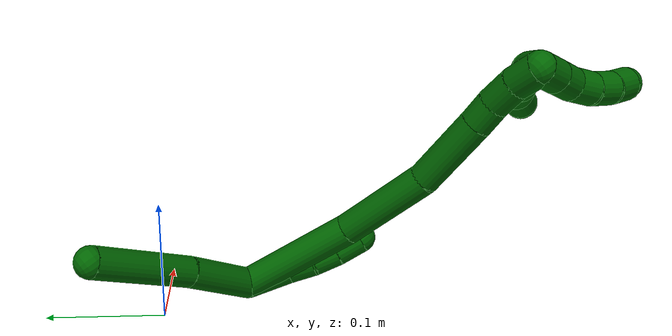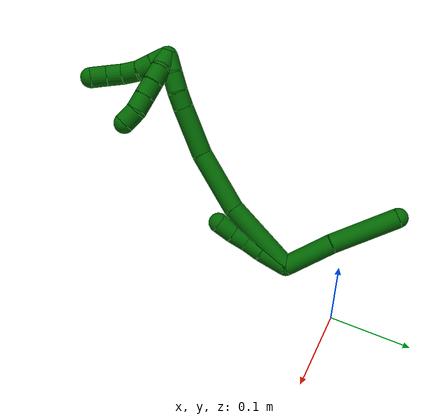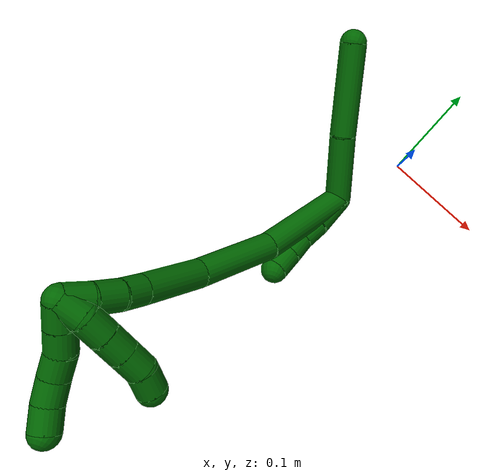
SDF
<sdf version="1.7">
 <world name="default">
  <model name="6">
   <static>0</static>
   <link name="6">
    <collision name="collision-cylinder-e_1_2_8">
     <pose>-0.024395 0.009203 -0.018463 -2.67917 -0.868821 2.20249</pose>
     <geometry><cylinder><radius>0.0125</radius><length>0.063897</length></cylinder></geometry>
     <surface>
      <friction><ode><mu>1.16</mu><mu2>1.16</mu2><slip1>0</slip1><slip2>0</slip2></ode></friction>
      <contact><ode><kp>1e+06</kp><kd>1</kd><max_vel>0</max_vel><min_depth>0.001</min_depth></ode></contact>
     </surface>
    </collision>
    <visual name="visual-cylinder-e_1_2_8">
     <pose>-0.024395 0.009203 -0.018463 -2.67917 -0.868821 2.20249</pose>
     <geometry><cylinder><radius>0.0125</radius><length>0.063897</length></cylinder></geometry>
     <material><ambient>0 0.392157 0.003922 1</ambient></material>
    </visual>
    <collision name="collision-cylinder-e_2_8_6">
     <pose>-0.079183 0.030619 -0.064864 -2.72949 -0.783807 2.20511</pose>
     <geometry><cylinder><radius>0.0125</radius><length>0.086103</length></cylinder></geometry>
     <surface>
      <friction><ode><mu>1.16</mu><mu2>1.16</mu2><slip1>0</slip1><slip2>0</slip2></ode></friction>
      <contact><ode><kp>1e+06</kp><kd>1</kd><max_vel>0</max_vel><min_depth>0.001</min_depth></ode></contact>
     </surface>
    </collision>
    <visual name="visual-cylinder-e_2_8_6">
     <pose>-0.079183 0.030619 -0.064864 -2.72949 -0.783807 2.20511</pose>
     <geometry><cylinder><radius>0.0125</radius><length>0.086103</length></cylinder></geometry>
     <material><ambient>0 0.392157 0.003922 1</ambient></material>
    </visual>
    <collision name="collision-cylinder-e_1_2_9">
     <pose>-0.002284 -0.006488 0.016225 0.380378 -0.129977 -0.025057</pose>
     <geometry><cylinder><radius>0.0125</radius><length>0.035245</length></cylinder></geometry>
     <surface>
      <friction><ode><mu>1.16</mu><mu2>1.16</mu2><slip1>0</slip1><slip2>0</slip2></ode></friction>
      <contact><ode><kp>1e+06</kp><kd>1</kd><max_vel>0</max_vel><min_depth>0.001</min_depth></ode></contact>
     </surface>
    </collision>
    <visual name="visual-cylinder-e_1_2_9">
     <pose>-0.002284 -0.006488 0.016225 0.380378 -0.129977 -0.025057</pose>
     <geometry><cylinder><radius>0.0125</radius><length>0.035245</length></cylinder></geometry>
     <material><ambient>0 0.392157 0.003922 1</ambient></material>
    </visual>
    <collision name="collision-cylinder-e_2_9_10">
     <pose>-0.006797 -0.017842 0.041938 0.473915 -0.206045 -0.049925</pose>
     <geometry><cylinder><radius>0.0125</radius><length>0.021789</length></cylinder></geometry>
     <surface>
      <friction><ode><mu>1.16</mu><mu2>1.16</mu2><slip1>0</slip1><slip2>0</slip2></ode></friction>
      <contact><ode><kp>1e+06</kp><kd>1</kd><max_vel>0</max_vel><min_depth>0.001</min_depth></ode></contact>
     </surface>
    </collision>
    <visual name="visual-cylinder-e_2_9_10">
     <pose>-0.006797 -0.017842 0.041938 0.473915 -0.206045 -0.049925</pose>
     <geometry><cylinder><radius>0.0125</radius><length>0.021789</length></cylinder></geometry>
     <material><ambient>0 0.392157 0.003922 1</ambient></material>
    </visual>
    <collision name="collision-cylinder-e_3_10_11">
     <pose>-0.010538 -0.025957 0.061107 0.323769 -0.146995 -0.024049</pose>
     <geometry><cylinder><radius>0.0125</radius><length>0.020643</length></cylinder></geometry>
     <surface>
      <friction><ode><mu>1.16</mu><mu2>1.16</mu2><slip1>0</slip1><slip2>0</slip2></ode></friction>
      <contact><ode><kp>1e+06</kp><kd>1</kd><max_vel>0</max_vel><min_depth>0.001</min_depth></ode></contact>
     </surface>
    </collision>
    <visual name="visual-cylinder-e_3_10_11">
     <pose>-0.010538 -0.025957 0.061107 0.323769 -0.146995 -0.024049</pose>
     <geometry><cylinder><radius>0.0125</radius><length>0.020643</length></cylinder></geometry>
     <material><ambient>0 0.392157 0.003922 1</ambient></material>
    </visual>
    <collision name="collision-cylinder-e_4_11_5">
     <pose>-0.014817 -0.031882 0.081263 0.250143 -0.250545 -0.031664</pose>
     <geometry><cylinder><radius>0.0125</radius><length>0.022323</length></cylinder></geometry>
     <surface>
      <friction><ode><mu>1.16</mu><mu2>1.16</mu2><slip1>0</slip1><slip2>0</slip2></ode></friction>
      <contact><ode><kp>1e+06</kp><kd>1</kd><max_vel>0</max_vel><min_depth>0.001</min_depth></ode></contact>
     </surface>
    </collision>
    <visual name="visual-cylinder-e_4_11_5">
     <pose>-0.014817 -0.031882 0.081263 0.250143 -0.250545 -0.031664</pose>
     <geometry><cylinder><radius>0.0125</radius><length>0.022323</length></cylinder></geometry>
     <material><ambient>0 0.392157 0.003922 1</ambient></material>
    </visual>
    <collision name="collision-cylinder-e_1_2_12">
     <pose>-0.020745 -0.015559 0.041029 0.362462 -0.441623 -0.082219</pose>
     <geometry><cylinder><radius>0.0125</radius><length>0.097075</length></cylinder></geometry>
     <surface>
      <friction><ode><mu>1.16</mu><mu2>1.16</mu2><slip1>0</slip1><slip2>0</slip2></ode></friction>
      <contact><ode><kp>1e+06</kp><kd>1</kd><max_vel>0</max_vel><min_depth>0.001</min_depth></ode></contact>
     </surface>
    </collision>
    <visual name="visual-cylinder-e_1_2_12">
     <pose>-0.020745 -0.015559 0.041029 0.362462 -0.441623 -0.082219</pose>
     <geometry><cylinder><radius>0.0125</radius><length>0.097075</length></cylinder></geometry>
     <material><ambient>0 0.392157 0.003922 1</ambient></material>
    </visual>
    <collision name="collision-cylinder-e_2_12_13">
     <pose>-0.064875 -0.042515 0.110686 0.378879 -0.649188 -0.12886</pose>
     <geometry><cylinder><radius>0.0125</radius><length>0.077363</length></cylinder></geometry>
     <surface>
      <friction><ode><mu>1.16</mu><mu2>1.16</mu2><slip1>0</slip1><slip2>0</slip2></ode></friction>
      <contact><ode><kp>1e+06</kp><kd>1</kd><max_vel>0</max_vel><min_depth>0.001</min_depth></ode></contact>
     </surface>
    </collision>
    <visual name="visual-cylinder-e_2_12_13">
     <pose>-0.064875 -0.042515 0.110686 0.378879 -0.649188 -0.12886</pose>
     <geometry><cylinder><radius>0.0125</radius><length>0.077363</length></cylinder></geometry>
     <material><ambient>0 0.392157 0.003922 1</ambient></material>
    </visual>
    <collision name="collision-cylinder-e_3_13_14">
     <pose>-0.110138 -0.057351 0.160019 0.164569 -0.806146 -0.070305</pose>
     <geometry><cylinder><radius>0.0125</radius><length>0.060637</length></cylinder></geometry>
     <surface>
      <friction><ode><mu>1.16</mu><mu2>1.16</mu2><slip1>0</slip1><slip2>0</slip2></ode></friction>
      <contact><ode><kp>1e+06</kp><kd>1</kd><max_vel>0</max_vel><min_depth>0.001</min_depth></ode></contact>
     </surface>
    </collision>
    <visual name="visual-cylinder-e_3_13_14">
     <pose>-0.110138 -0.057351 0.160019 0.164569 -0.806146 -0.070305</pose>
     <geometry><cylinder><radius>0.0125</radius><length>0.060637</length></cylinder></geometry>
     <material><ambient>0 0.392157 0.003922 1</ambient></material>
    </visual>
    <collision name="collision-cylinder-e_4_14_15">
     <pose>-0.13955 -0.061667 0.187366 0.131388 -0.843916 -0.059051</pose>
     <geometry><cylinder><radius>0.0125</radius><length>0.020162</length></cylinder></geometry>
     <surface>
      <friction><ode><mu>1.16</mu><mu2>1.16</mu2><slip1>0</slip1><slip2>0</slip2></ode></friction>
      <contact><ode><kp>1e+06</kp><kd>1</kd><max_vel>0</max_vel><min_depth>0.001</min_depth></ode></contact>
     </surface>
    </collision>
    <visual name="visual-cylinder-e_4_14_15">
     <pose>-0.13955 -0.061667 0.187366 0.131388 -0.843916 -0.059051</pose>
     <geometry><cylinder><radius>0.0125</radius><length>0.020162</length></cylinder></geometry>
     <material><ambient>0 0.392157 0.003922 1</ambient></material>
    </visual>
    <collision name="collision-cylinder-e_5_15_16">
     <pose>-0.155949 -0.065013 0.200634 0.356548 -0.897572 -0.173107</pose>
     <geometry><cylinder><radius>0.0125</radius><length>0.022682</length></cylinder></geometry>
     <surface>
      <friction><ode><mu>1.16</mu><mu2>1.16</mu2><slip1>0</slip1><slip2>0</slip2></ode></friction>
      <contact><ode><kp>1e+06</kp><kd>1</kd><max_vel>0</max_vel><min_depth>0.001</min_depth></ode></contact>
     </surface>
    </collision>
    <visual name="visual-cylinder-e_5_15_16">
     <pose>-0.155949 -0.065013 0.200634 0.356548 -0.897572 -0.173107</pose>
     <geometry><cylinder><radius>0.0125</radius><length>0.022682</length></cylinder></geometry>
     <material><ambient>0 0.392157 0.003922 1</ambient></material>
    </visual>
    <collision name="collision-cylinder-e_6_16_1">
     <pose>-0.173257 -0.071829 0.212894 0.657364 -0.870328 -0.314484</pose>
     <geometry><cylinder><radius>0.0125</radius><length>0.022082</length></cylinder></geometry>
     <surface>
      <friction><ode><mu>1.16</mu><mu2>1.16</mu2><slip1>0</slip1><slip2>0</slip2></ode></friction>
      <contact><ode><kp>1e+06</kp><kd>1</kd><max_vel>0</max_vel><min_depth>0.001</min_depth></ode></contact>
     </surface>
    </collision>
    <visual name="visual-cylinder-e_6_16_1">
     <pose>-0.173257 -0.071829 0.212894 0.657364 -0.870328 -0.314484</pose>
     <geometry><cylinder><radius>0.0125</radius><length>0.022082</length></cylinder></geometry>
     <material><ambient>0 0.392157 0.003922 1</ambient></material>
    </visual>
    <collision name="collision-cylinder-e_1_1_17">
     <pose>-0.174383 -0.079173 0.224654 0.4548 0.820468 0.200603</pose>
     <geometry><cylinder><radius>0.0125</radius><length>0.02</length></cylinder></geometry>
     <surface>
      <friction><ode><mu>1.16</mu><mu2>1.16</mu2><slip1>0</slip1><slip2>0</slip2></ode></friction>
      <contact><ode><kp>1e+06</kp><kd>1</kd><max_vel>0</max_vel><min_depth>0.001</min_depth></ode></contact>
     </surface>
    </collision>
    <visual name="visual-cylinder-e_1_1_17">
     <pose>-0.174383 -0.079173 0.224654 0.4548 0.820468 0.200603</pose>
     <geometry><cylinder><radius>0.0125</radius><length>0.02</length></cylinder></geometry>
     <material><ambient>0 0.392157 0.003922 1</ambient></material>
    </visual>
    <collision name="collision-cylinder-e_2_17_18">
     <pose>-0.159737 -0.085217 0.236858 0.464898 0.822991 0.205891</pose>
     <geometry><cylinder><radius>0.0125</radius><length>0.02</length></cylinder></geometry>
     <surface>
      <friction><ode><mu>1.16</mu><mu2>1.16</mu2><slip1>0</slip1><slip2>0</slip2></ode></friction>
      <contact><ode><kp>1e+06</kp><kd>1</kd><max_vel>0</max_vel><min_depth>0.001</min_depth></ode></contact>
     </surface>
    </collision>
    <visual name="visual-cylinder-e_2_17_18">
     <pose>-0.159737 -0.085217 0.236858 0.464898 0.822991 0.205891</pose>
     <geometry><cylinder><radius>0.0125</radius><length>0.02</length></cylinder></geometry>
     <material><ambient>0 0.392157 0.003922 1</ambient></material>
    </visual>
    <collision name="collision-cylinder-e_3_18_19">
     <pose>-0.147026 -0.092655 0.250134 0.547607 0.567888 0.163559</pose>
     <geometry><cylinder><radius>0.0125</radius><length>0.02</length></cylinder></geometry>
     <surface>
      <friction><ode><mu>1.16</mu><mu2>1.16</mu2><slip1>0</slip1><slip2>0</slip2></ode></friction>
      <contact><ode><kp>1e+06</kp><kd>1</kd><max_vel>0</max_vel><min_depth>0.001</min_depth></ode></contact>
     </surface>
    </collision>
    <visual name="visual-cylinder-e_3_18_19">
     <pose>-0.147026 -0.092655 0.250134 0.547607 0.567888 0.163559</pose>
     <geometry><cylinder><radius>0.0125</radius><length>0.02</length></cylinder></geometry>
     <material><ambient>0 0.392157 0.003922 1</ambient></material>
    </visual>
    <collision name="collision-cylinder-e_4_19_20">
     <pose>-0.136894 -0.099739 0.265707 0.311223 0.495417 0.079309</pose>
     <geometry><cylinder><radius>0.0125</radius><length>0.02</length></cylinder></geometry>
     <surface>
      <friction><ode><mu>1.16</mu><mu2>1.16</mu2><slip1>0</slip1><slip2>0</slip2></ode></friction>
      <contact><ode><kp>1e+06</kp><kd>1</kd><max_vel>0</max_vel><min_depth>0.001</min_depth></ode></contact>
     </surface>
    </collision>
    <visual name="visual-cylinder-e_4_19_20">
     <pose>-0.136894 -0.099739 0.265707 0.311223 0.495417 0.079309</pose>
     <geometry><cylinder><radius>0.0125</radius><length>0.02</length></cylinder></geometry>
     <material><ambient>0 0.392157 0.003922 1</ambient></material>
    </visual>
    <collision name="collision-cylinder-e_5_20_4">
     <pose>-0.12726 -0.103301 0.282767 0.099645 0.509734 0.025981</pose>
     <geometry><cylinder><radius>0.0125</radius><length>0.02</length></cylinder></geometry>
     <surface>
      <friction><ode><mu>1.16</mu><mu2>1.16</mu2><slip1>0</slip1><slip2>0</slip2></ode></friction>
      <contact><ode><kp>1e+06</kp><kd>1</kd><max_vel>0</max_vel><min_depth>0.001</min_depth></ode></contact>
     </surface>
    </collision>
    <visual name="visual-cylinder-e_5_20_4">
     <pose>-0.12726 -0.103301 0.282767 0.099645 0.509734 0.025981</pose>
     <geometry><cylinder><radius>0.0125</radius><length>0.02</length></cylinder></geometry>
     <material><ambient>0 0.392157 0.003922 1</ambient></material>
    </visual>
    <collision name="collision-cylinder-e_1_1_21">
     <pose>-0.173521 -0.07078 0.220529 -1.21579 0.957313 -0.692969</pose>
     <geometry><cylinder><radius>0.0125</radius><length>0.02</length></cylinder></geometry>
     <surface>
      <friction><ode><mu>1.16</mu><mu2>1.16</mu2><slip1>0</slip1><slip2>0</slip2></ode></friction>
      <contact><ode><kp>1e+06</kp><kd>1</kd><max_vel>0</max_vel><min_depth>0.001</min_depth></ode></contact>
     </surface>
    </collision>
    <visual name="visual-cylinder-e_1_1_21">
     <pose>-0.173521 -0.07078 0.220529 -1.21579 0.957313 -0.692969</pose>
     <geometry><cylinder><radius>0.0125</radius><length>0.02</length></cylinder></geometry>
     <material><ambient>0 0.392157 0.003922 1</ambient></material>
    </visual>
    <collision name="collision-cylinder-e_2_21_22">
     <pose>-0.155815 -0.063037 0.224449 -0.884884 1.26296 -0.667119</pose>
     <geometry><cylinder><radius>0.0125</radius><length>0.02</length></cylinder></geometry>
     <surface>
      <friction><ode><mu>1.16</mu><mu2>1.16</mu2><slip1>0</slip1><slip2>0</slip2></ode></friction>
      <contact><ode><kp>1e+06</kp><kd>1</kd><max_vel>0</max_vel><min_depth>0.001</min_depth></ode></contact>
     </surface>
    </collision>
    <visual name="visual-cylinder-e_2_21_22">
     <pose>-0.155815 -0.063037 0.224449 -0.884884 1.26296 -0.667119</pose>
     <geometry><cylinder><radius>0.0125</radius><length>0.02</length></cylinder></geometry>
     <material><ambient>0 0.392157 0.003922 1</ambient></material>
    </visual>
    <collision name="collision-cylinder-e_3_22_23">
     <pose>-0.136666 -0.058705 0.228246 -0.813912 1.29388 -0.629525</pose>
     <geometry><cylinder><radius>0.0125</radius><length>0.02</length></cylinder></geometry>
     <surface>
      <friction><ode><mu>1.16</mu><mu2>1.16</mu2><slip1>0</slip1><slip2>0</slip2></ode></friction>
      <contact><ode><kp>1e+06</kp><kd>1</kd><max_vel>0</max_vel><min_depth>0.001</min_depth></ode></contact>
     </surface>
    </collision>
    <visual name="visual-cylinder-e_3_22_23">
     <pose>-0.136666 -0.058705 0.228246 -0.813912 1.29388 -0.629525</pose>
     <geometry><cylinder><radius>0.0125</radius><length>0.02</length></cylinder></geometry>
     <material><ambient>0 0.392157 0.003922 1</ambient></material>
    </visual>
    <collision name="collision-cylinder-e_4_23_24">
     <pose>-0.117423 -0.05475 0.231994 -0.81059 1.29584 -0.628029</pose>
     <geometry><cylinder><radius>0.0125</radius><length>0.02</length></cylinder></geometry>
     <surface>
      <friction><ode><mu>1.16</mu><mu2>1.16</mu2><slip1>0</slip1><slip2>0</slip2></ode></friction>
      <contact><ode><kp>1e+06</kp><kd>1</kd><max_vel>0</max_vel><min_depth>0.001</min_depth></ode></contact>
     </surface>
    </collision>
    <visual name="visual-cylinder-e_4_23_24">
     <pose>-0.117423 -0.05475 0.231994 -0.81059 1.29584 -0.628029</pose>
     <geometry><cylinder><radius>0.0125</radius><length>0.02</length></cylinder></geometry>
     <material><ambient>0 0.392157 0.003922 1</ambient></material>
    </visual>
    <collision name="collision-cylinder-e_5_24_3">
     <pose>-0.098538 -0.053458 0.237578 0.179939 1.1838 0.121154</pose>
     <geometry><cylinder><radius>0.0125</radius><length>0.02</length></cylinder></geometry>
     <surface>
      <friction><ode><mu>1.16</mu><mu2>1.16</mu2><slip1>0</slip1><slip2>0</slip2></ode></friction>
      <contact><ode><kp>1e+06</kp><kd>1</kd><max_vel>0</max_vel><min_depth>0.001</min_depth></ode></contact>
     </surface>
    </collision>
    <visual name="visual-cylinder-e_5_24_3">
     <pose>-0.098538 -0.053458 0.237578 0.179939 1.1838 0.121154</pose>
     <geometry><cylinder><radius>0.0125</radius><length>0.02</length></cylinder></geometry>
     <material><ambient>0 0.392157 0.003922 1</ambient></material>
    </visual>
    <collision name="collision-sphere-3">
     <pose>-0.089277 -0.054133 0.241291 0 -0 0</pose>
     <geometry><sphere><radius>0.0125</radius></sphere></geometry>
     <surface>
      <friction><ode><mu>1.16</mu><mu2>1.16</mu2><slip1>0</slip1><slip2>0</slip2></ode></friction>
      <contact><ode><kp>1e+06</kp><kd>1</kd><max_vel>0</max_vel><min_depth>0.001</min_depth></ode></contact>
     </surface>
    </collision>
    <visual name="visual-sphere-3">
     <pose>-0.089277 -0.054133 0.241291 0 -0 0</pose>
     <geometry><sphere><radius>0.0125</radius></sphere></geometry>
     <material><ambient>0 0.392157 0.003922 1</ambient></material>
    </visual>
    <collision name="collision-sphere-24">
     <pose>-0.107798 -0.052782 0.233865 0 -0 0</pose>
     <geometry><sphere><radius>0.0125</radius></sphere></geometry>
     <surface>
      <friction><ode><mu>1.16</mu><mu2>1.16</mu2><slip1>0</slip1><slip2>0</slip2></ode></friction>
      <contact><ode><kp>1e+06</kp><kd>1</kd><max_vel>0</max_vel><min_depth>0.001</min_depth></ode></contact>
     </surface>
    </collision>
    <visual name="visual-sphere-24">
     <pose>-0.107798 -0.052782 0.233865 0 -0 0</pose>
     <geometry><sphere><radius>0.0125</radius></sphere></geometry>
     <material><ambient>0 0.392157 0.003922 1</ambient></material>
    </visual>
    <collision name="collision-sphere-23">
     <pose>-0.127047 -0.056717 0.230123 0 -0 0</pose>
     <geometry><sphere><radius>0.0125</radius></sphere></geometry>
     <surface>
      <friction><ode><mu>1.16</mu><mu2>1.16</mu2><slip1>0</slip1><slip2>0</slip2></ode></friction>
      <contact><ode><kp>1e+06</kp><kd>1</kd><max_vel>0</max_vel><min_depth>0.001</min_depth></ode></contact>
     </surface>
    </collision>
    <visual name="visual-sphere-23">
     <pose>-0.127047 -0.056717 0.230123 0 -0 0</pose>
     <geometry><sphere><radius>0.0125</radius></sphere></geometry>
     <material><ambient>0 0.392157 0.003922 1</ambient></material>
    </visual>
    <collision name="collision-sphere-22">
     <pose>-0.146285 -0.060692 0.226368 0 -0 0</pose>
     <geometry><sphere><radius>0.0125</radius></sphere></geometry>
     <surface>
      <friction><ode><mu>1.16</mu><mu2>1.16</mu2><slip1>0</slip1><slip2>0</slip2></ode></friction>
      <contact><ode><kp>1e+06</kp><kd>1</kd><max_vel>0</max_vel><min_depth>0.001</min_depth></ode></contact>
     </surface>
    </collision>
    <visual name="visual-sphere-22">
     <pose>-0.146285 -0.060692 0.226368 0 -0 0</pose>
     <geometry><sphere><radius>0.0125</radius></sphere></geometry>
     <material><ambient>0 0.392157 0.003922 1</ambient></material>
    </visual>
    <collision name="collision-sphere-21">
     <pose>-0.165345 -0.065381 0.22253 0 -0 0</pose>
     <geometry><sphere><radius>0.0125</radius></sphere></geometry>
     <surface>
      <friction><ode><mu>1.16</mu><mu2>1.16</mu2><slip1>0</slip1><slip2>0</slip2></ode></friction>
      <contact><ode><kp>1e+06</kp><kd>1</kd><max_vel>0</max_vel><min_depth>0.001</min_depth></ode></contact>
     </surface>
    </collision>
    <visual name="visual-sphere-21">
     <pose>-0.165345 -0.065381 0.22253 0 -0 0</pose>
     <geometry><sphere><radius>0.0125</radius></sphere></geometry>
     <material><ambient>0 0.392157 0.003922 1</ambient></material>
    </visual>
    <collision name="collision-sphere-4">
     <pose>-0.122381 -0.10417 0.291453 0 -0 0</pose>
     <geometry><sphere><radius>0.0125</radius></sphere></geometry>
     <surface>
      <friction><ode><mu>1.16</mu><mu2>1.16</mu2><slip1>0</slip1><slip2>0</slip2></ode></friction>
      <contact><ode><kp>1e+06</kp><kd>1</kd><max_vel>0</max_vel><min_depth>0.001</min_depth></ode></contact>
     </surface>
    </collision>
    <visual name="visual-sphere-4">
     <pose>-0.122381 -0.10417 0.291453 0 -0 0</pose>
     <geometry><sphere><radius>0.0125</radius></sphere></geometry>
     <material><ambient>0 0.392157 0.003922 1</ambient></material>
    </visual>
    <collision name="collision-sphere-20">
     <pose>-0.13214 -0.102433 0.274082 0 -0 0</pose>
     <geometry><sphere><radius>0.0125</radius></sphere></geometry>
     <surface>
      <friction><ode><mu>1.16</mu><mu2>1.16</mu2><slip1>0</slip1><slip2>0</slip2></ode></friction>
      <contact><ode><kp>1e+06</kp><kd>1</kd><max_vel>0</max_vel><min_depth>0.001</min_depth></ode></contact>
     </surface>
    </collision>
    <visual name="visual-sphere-20">
     <pose>-0.13214 -0.102433 0.274082 0 -0 0</pose>
     <geometry><sphere><radius>0.0125</radius></sphere></geometry>
     <material><ambient>0 0.392157 0.003922 1</ambient></material>
    </visual>
    <collision name="collision-sphere-11">
     <pose>-0.012049 -0.029205 0.070786 0 -0 0</pose>
     <geometry><sphere><radius>0.0125</radius></sphere></geometry>
     <surface>
      <friction><ode><mu>1.16</mu><mu2>1.16</mu2><slip1>0</slip1><slip2>0</slip2></ode></friction>
      <contact><ode><kp>1e+06</kp><kd>1</kd><max_vel>0</max_vel><min_depth>0.001</min_depth></ode></contact>
     </surface>
    </collision>
    <visual name="visual-sphere-11">
     <pose>-0.012049 -0.029205 0.070786 0 -0 0</pose>
     <geometry><sphere><radius>0.0125</radius></sphere></geometry>
     <material><ambient>0 0.392157 0.003922 1</ambient></material>
    </visual>
    <collision name="collision-sphere-10">
     <pose>-0.009026 -0.022709 0.051427 0 -0 0</pose>
     <geometry><sphere><radius>0.0125</radius></sphere></geometry>
     <surface>
      <friction><ode><mu>1.16</mu><mu2>1.16</mu2><slip1>0</slip1><slip2>0</slip2></ode></friction>
      <contact><ode><kp>1e+06</kp><kd>1</kd><max_vel>0</max_vel><min_depth>0.001</min_depth></ode></contact>
     </surface>
    </collision>
    <visual name="visual-sphere-10">
     <pose>-0.009026 -0.022709 0.051427 0 -0 0</pose>
     <geometry><sphere><radius>0.0125</radius></sphere></geometry>
     <material><ambient>0 0.392157 0.003922 1</ambient></material>
    </visual>
    <collision name="collision-sphere-6">
     <pose>-0.109577 0.042832 -0.092802 0 -0 0</pose>
     <geometry><sphere><radius>0.0125</radius></sphere></geometry>
     <surface>
      <friction><ode><mu>1.16</mu><mu2>1.16</mu2><slip1>0</slip1><slip2>0</slip2></ode></friction>
      <contact><ode><kp>1e+06</kp><kd>1</kd><max_vel>0</max_vel><min_depth>0.001</min_depth></ode></contact>
     </surface>
    </collision>
    <visual name="visual-sphere-6">
     <pose>-0.109577 0.042832 -0.092802 0 -0 0</pose>
     <geometry><sphere><radius>0.0125</radius></sphere></geometry>
     <material><ambient>0 0.392157 0.003922 1</ambient></material>
    </visual>
    <collision name="collision-sphere-9">
     <pose>-0.004568 -0.012975 0.03245 0 -0 0</pose>
     <geometry><sphere><radius>0.0125</radius></sphere></geometry>
     <surface>
      <friction><ode><mu>1.16</mu><mu2>1.16</mu2><slip1>0</slip1><slip2>0</slip2></ode></friction>
      <contact><ode><kp>1e+06</kp><kd>1</kd><max_vel>0</max_vel><min_depth>0.001</min_depth></ode></contact>
     </surface>
    </collision>
    <visual name="visual-sphere-9">
     <pose>-0.004568 -0.012975 0.03245 0 -0 0</pose>
     <geometry><sphere><radius>0.0125</radius></sphere></geometry>
     <material><ambient>0 0.392157 0.003922 1</ambient></material>
    </visual>
    <collision name="collision-sphere-2">
     <geometry><sphere><radius>0.0125</radius></sphere></geometry>
     <surface>
      <friction><ode><mu>1.16</mu><mu2>1.16</mu2><slip1>0</slip1><slip2>0</slip2></ode></friction>
      <contact><ode><kp>1e+06</kp><kd>1</kd><max_vel>0</max_vel><min_depth>0.001</min_depth></ode></contact>
     </surface>
    </collision>
    <visual name="visual-sphere-2">
     <geometry><sphere><radius>0.0125</radius></sphere></geometry>
     <material><ambient>0 0.392157 0.003922 1</ambient></material>
    </visual>
    <collision name="collision-sphere-19">
     <pose>-0.141648 -0.097045 0.257332 0 -0 0</pose>
     <geometry><sphere><radius>0.0125</radius></sphere></geometry>
     <surface>
      <friction><ode><mu>1.16</mu><mu2>1.16</mu2><slip1>0</slip1><slip2>0</slip2></ode></friction>
      <contact><ode><kp>1e+06</kp><kd>1</kd><max_vel>0</max_vel><min_depth>0.001</min_depth></ode></contact>
     </surface>
    </collision>
    <visual name="visual-sphere-19">
     <pose>-0.141648 -0.097045 0.257332 0 -0 0</pose>
     <geometry><sphere><radius>0.0125</radius></sphere></geometry>
     <material><ambient>0 0.392157 0.003922 1</ambient></material>
    </visual>
    <collision name="collision-sphere-8">
     <pose>-0.04879 0.018407 -0.036927 0 -0 0</pose>
     <geometry><sphere><radius>0.0125</radius></sphere></geometry>
     <surface>
      <friction><ode><mu>1.16</mu><mu2>1.16</mu2><slip1>0</slip1><slip2>0</slip2></ode></friction>
      <contact><ode><kp>1e+06</kp><kd>1</kd><max_vel>0</max_vel><min_depth>0.001</min_depth></ode></contact>
     </surface>
    </collision>
    <visual name="visual-sphere-8">
     <pose>-0.04879 0.018407 -0.036927 0 -0 0</pose>
     <geometry><sphere><radius>0.0125</radius></sphere></geometry>
     <material><ambient>0 0.392157 0.003922 1</ambient></material>
    </visual>
    <collision name="collision-sphere-5">
     <pose>-0.017584 -0.034559 0.09174 0 -0 0</pose>
     <geometry><sphere><radius>0.0125</radius></sphere></geometry>
     <surface>
      <friction><ode><mu>1.16</mu><mu2>1.16</mu2><slip1>0</slip1><slip2>0</slip2></ode></friction>
      <contact><ode><kp>1e+06</kp><kd>1</kd><max_vel>0</max_vel><min_depth>0.001</min_depth></ode></contact>
     </surface>
    </collision>
    <visual name="visual-sphere-5">
     <pose>-0.017584 -0.034559 0.09174 0 -0 0</pose>
     <geometry><sphere><radius>0.0125</radius></sphere></geometry>
     <material><ambient>0 0.392157 0.003922 1</ambient></material>
    </visual>
    <collision name="collision-sphere-12">
     <pose>-0.04149 -0.031118 0.082059 0 -0 0</pose>
     <geometry><sphere><radius>0.0125</radius></sphere></geometry>
     <surface>
      <friction><ode><mu>1.16</mu><mu2>1.16</mu2><slip1>0</slip1><slip2>0</slip2></ode></friction>
      <contact><ode><kp>1e+06</kp><kd>1</kd><max_vel>0</max_vel><min_depth>0.001</min_depth></ode></contact>
     </surface>
    </collision>
    <visual name="visual-sphere-12">
     <pose>-0.04149 -0.031118 0.082059 0 -0 0</pose>
     <geometry><sphere><radius>0.0125</radius></sphere></geometry>
     <material><ambient>0 0.392157 0.003922 1</ambient></material>
    </visual>
    <collision name="collision-sphere-13">
     <pose>-0.088259 -0.053912 0.139314 0 -0 0</pose>
     <geometry><sphere><radius>0.0125</radius></sphere></geometry>
     <surface>
      <friction><ode><mu>1.16</mu><mu2>1.16</mu2><slip1>0</slip1><slip2>0</slip2></ode></friction>
      <contact><ode><kp>1e+06</kp><kd>1</kd><max_vel>0</max_vel><min_depth>0.001</min_depth></ode></contact>
     </surface>
    </collision>
    <visual name="visual-sphere-13">
     <pose>-0.088259 -0.053912 0.139314 0 -0 0</pose>
     <geometry><sphere><radius>0.0125</radius></sphere></geometry>
     <material><ambient>0 0.392157 0.003922 1</ambient></material>
    </visual>
    <collision name="collision-sphere-14">
     <pose>-0.132016 -0.060789 0.180725 0 -0 0</pose>
     <geometry><sphere><radius>0.0125</radius></sphere></geometry>
     <surface>
      <friction><ode><mu>1.16</mu><mu2>1.16</mu2><slip1>0</slip1><slip2>0</slip2></ode></friction>
      <contact><ode><kp>1e+06</kp><kd>1</kd><max_vel>0</max_vel><min_depth>0.001</min_depth></ode></contact>
     </surface>
    </collision>
    <visual name="visual-sphere-14">
     <pose>-0.132016 -0.060789 0.180725 0 -0 0</pose>
     <geometry><sphere><radius>0.0125</radius></sphere></geometry>
     <material><ambient>0 0.392157 0.003922 1</ambient></material>
    </visual>
    <collision name="collision-sphere-15">
     <pose>-0.147083 -0.062545 0.194008 0 -0 0</pose>
     <geometry><sphere><radius>0.0125</radius></sphere></geometry>
     <surface>
      <friction><ode><mu>1.16</mu><mu2>1.16</mu2><slip1>0</slip1><slip2>0</slip2></ode></friction>
      <contact><ode><kp>1e+06</kp><kd>1</kd><max_vel>0</max_vel><min_depth>0.001</min_depth></ode></contact>
     </surface>
    </collision>
    <visual name="visual-sphere-15">
     <pose>-0.147083 -0.062545 0.194008 0 -0 0</pose>
     <geometry><sphere><radius>0.0125</radius></sphere></geometry>
     <material><ambient>0 0.392157 0.003922 1</ambient></material>
    </visual>
    <collision name="collision-sphere-16">
     <pose>-0.164815 -0.067481 0.207261 0 -0 0</pose>
     <geometry><sphere><radius>0.0125</radius></sphere></geometry>
     <surface>
      <friction><ode><mu>1.16</mu><mu2>1.16</mu2><slip1>0</slip1><slip2>0</slip2></ode></friction>
      <contact><ode><kp>1e+06</kp><kd>1</kd><max_vel>0</max_vel><min_depth>0.001</min_depth></ode></contact>
     </surface>
    </collision>
    <visual name="visual-sphere-16">
     <pose>-0.164815 -0.067481 0.207261 0 -0 0</pose>
     <geometry><sphere><radius>0.0125</radius></sphere></geometry>
     <material><ambient>0 0.392157 0.003922 1</ambient></material>
    </visual>
    <collision name="collision-sphere-1">
     <pose>-0.181698 -0.076178 0.218528 0 -0 0</pose>
     <geometry><sphere><radius>0.0125</radius></sphere></geometry>
     <surface>
      <friction><ode><mu>1.16</mu><mu2>1.16</mu2><slip1>0</slip1><slip2>0</slip2></ode></friction>
      <contact><ode><kp>1e+06</kp><kd>1</kd><max_vel>0</max_vel><min_depth>0.001</min_depth></ode></contact>
     </surface>
    </collision>
    <visual name="visual-sphere-1">
     <pose>-0.181698 -0.076178 0.218528 0 -0 0</pose>
     <geometry><sphere><radius>0.0125</radius></sphere></geometry>
     <material><ambient>0 0.392157 0.003922 1</ambient></material>
    </visual>
    <collision name="collision-sphere-18">
     <pose>-0.152405 -0.088266 0.242936 0 -0 0</pose>
     <geometry><sphere><radius>0.0125</radius></sphere></geometry>
     <surface>
      <friction><ode><mu>1.16</mu><mu2>1.16</mu2><slip1>0</slip1><slip2>0</slip2></ode></friction>
      <contact><ode><kp>1e+06</kp><kd>1</kd><max_vel>0</max_vel><min_depth>0.001</min_depth></ode></contact>
     </surface>
    </collision>
    <visual name="visual-sphere-18">
     <pose>-0.152405 -0.088266 0.242936 0 -0 0</pose>
     <geometry><sphere><radius>0.0125</radius></sphere></geometry>
     <material><ambient>0 0.392157 0.003922 1</ambient></material>
    </visual>
    <collision name="collision-sphere-17">
     <pose>-0.167069 -0.082169 0.230779 0 -0 0</pose>
     <geometry><sphere><radius>0.0125</radius></sphere></geometry>
     <surface>
      <friction><ode><mu>1.16</mu><mu2>1.16</mu2><slip1>0</slip1><slip2>0</slip2></ode></friction>
      <contact><ode><kp>1e+06</kp><kd>1</kd><max_vel>0</max_vel><min_depth>0.001</min_depth></ode></contact>
     </surface>
    </collision>
    <visual name="visual-sphere-17">
     <pose>-0.167069 -0.082169 0.230779 0 -0 0</pose>
     <geometry><sphere><radius>0.0125</radius></sphere></geometry>
     <material><ambient>0 0.392157 0.003922 1</ambient></material>
    </visual>
    <inertial>
     <pose>-0.082116 -0.03525 0.108178 0 -0 0</pose>
     <mass>0.75</mass>
     <inertia>
      <ixx>0.000127</ixx>
      <ixy>0</ixy>
      <ixz>0</ixz>
      <iyy>0.000253</iyy>
      <iyz>0</iyz>
      <izz>0.000174</izz>
     </inertia>
    </inertial>
   </link>
   <pose>-0.022927 -0.072638 0.038594 0.828842 0.793594 -0.13945</pose>
  </model>
 </world>
</sdf>
